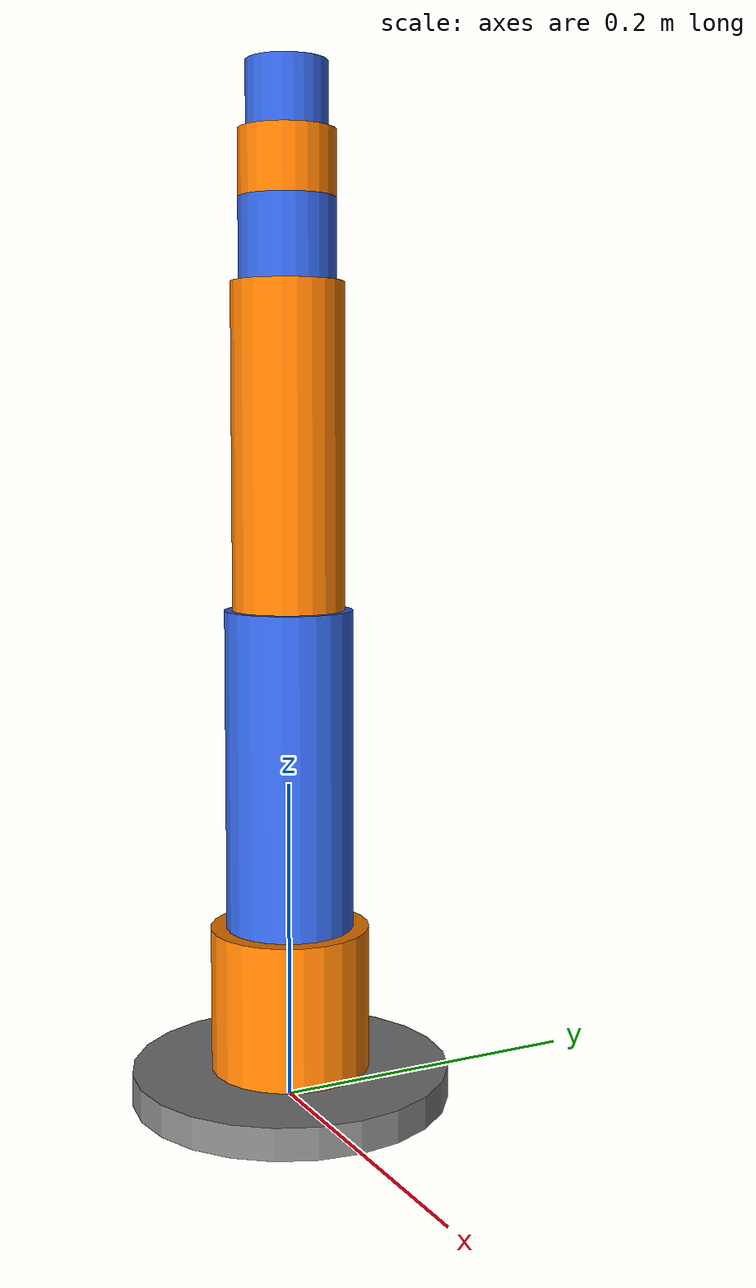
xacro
<?xml version="1.0"?>
<robot name="the_8th_leg" xmlns:xacro="http://www.ros.org/wiki/xacro">
    <xacro:arg name="hardware_plugin" default="gz_ros2_control/GazeboSimSystem"/>

    <!-- Properties -->
    <xacro:property name="link1_baseLength" value="0.02"/>
    <xacro:property name="link2_shoulderLength" value="0.09"/>
    <xacro:property name="link3_upperArmLength" value="0.20"/>
    <xacro:property name="link4_lowerArmLength" value="0.20"/>
    <xacro:property name="link5_wristPitchLength" value="0.05"/>
    <xacro:property name="link6_wristRollLength" value="0.04"/>
    <xacro:property name="link7_wristYawLength" value="0.04"/>

    <xacro:property name="link1_baseRadius" value="0.1"/>
    <xacro:property name="link2_shoulderRadius" value="0.05"/>
    <xacro:property name="link3_upperArmRadius" value="0.04"/>
    <xacro:property name="link4_lowerArmRadius" value="0.035"/>
    <xacro:property name="link5_wristPitchRadius" value="0.03"/>
    <xacro:property name="link6_wristRollRadius" value="0.03"/>
    <xacro:property name="link7_wristYawRadius" value="0.025"/>

    <xacro:property name="simplifiedMass" value="1"/>

    <xacro:property name="joint_effort"   value="50.0"/>
    <xacro:property name="joint_velocity" value="1.0"/>
    <xacro:property name="joint_damping"  value="0.5"/>

    <!-- Colors so you can actually see the joints rotate -->
    <material name="grey">
        <color rgba="0.5 0.5 0.5 1.0"/>
    </material>
    <material name="orange">
        <color rgba="1.0 0.5 0.0 1.0"/>
    </material>
    <material name="blue">
        <color rgba="0.2 0.4 0.9 1.0"/>
    </material>

    <!-- Macro -->
    <xacro:macro name="cyl_link" params="name radius length mass material">

        <xacro:property name="ixx" value="${(1/12) * mass * (3*radius**2 + length**2)}"/>
        <xacro:property name="izz" value="${0.5 * mass * radius**2}"/>

        <link name="${name}">
            <visual>
                <origin xyz="0 0 ${length/2}"/>
                <geometry>
                    <cylinder radius="${radius}" length="${length}"/>
                </geometry>
                <material name="${material}"/>
            </visual>
            <collision>
                <origin xyz="0 0 ${length/2}"/>
                <geometry>
                     <cylinder radius="${radius}" length="${length}"/>
                </geometry>
            </collision>
            <inertial>
                <origin xyz="0 0 ${length/2}"/>
                <mass value="${mass}"/>
                <inertia ixx="${ixx}" iyy="${ixx}" izz="${izz}" ixy="0" ixz="0" iyz="0"/>
            </inertial>
        </link>
    </xacro:macro>

    <!-- Calls -->
    <link name="world"/>

    <xacro:cyl_link name="base_link" radius="${link1_baseRadius}"       length="${link1_baseLength}"       mass="${simplifiedMass}" material="grey"/>
    <xacro:cyl_link name="link_2"    radius="${link2_shoulderRadius}"   length="${link2_shoulderLength}"   mass="${simplifiedMass}" material="orange"/>
    <xacro:cyl_link name="link_3"    radius="${link3_upperArmRadius}"   length="${link3_upperArmLength}"   mass="${simplifiedMass}" material="blue"/>
    <xacro:cyl_link name="link_4"    radius="${link4_lowerArmRadius}"   length="${link4_lowerArmLength}"   mass="${simplifiedMass}" material="orange"/>
    <xacro:cyl_link name="link_5"    radius="${link5_wristPitchRadius}" length="${link5_wristPitchLength}" mass="${simplifiedMass}" material="blue"/>
    <xacro:cyl_link name="link_6"    radius="${link6_wristRollRadius}"  length="${link6_wristRollLength}"  mass="${simplifiedMass}" material="orange"/>
    <xacro:cyl_link name="link_7"    radius="${link7_wristYawRadius}"   length="${link7_wristYawLength}"   mass="${simplifiedMass}" material="blue"/>

    <!-- Joint 0 : World link to Base link -->
    <joint name="world_joint" type="fixed">
        <parent link="world"/>
        <child link="base_link"/>
        <origin xyz="0 0 0"/>
    </joint>

    <!-- JOINT 1 : Base yaw, CCW from above -->
    <joint name="base_yaw_joint" type="revolute">
        <parent link="base_link"/>
        <child link="link_2"/>
        <origin xyz="0 0 ${link1_baseLength}"/>
        <axis xyz="0 0 1"/>
        <limit lower="${-pi}" upper="${pi}" effort="${joint_effort}" velocity="${joint_velocity}"/>
        <dynamics damping="${joint_damping}" friction="0.0"/>
    </joint>

    <!-- JOINT 2 : Shoulder pitch, + tips forward toward +X -->
    <joint name="shoulder_pitch_joint" type="revolute">
        <parent link="link_2"/>
        <child link="link_3"/>
        <origin xyz="0 0 ${link2_shoulderLength}"/>
        <axis xyz="0 1 0"/>
        <limit lower="${radians(-108)}" upper="${radians(114)}" effort="${joint_effort}" velocity="${joint_velocity}"/>
        <dynamics damping="${joint_damping}" friction="0.0"/>
    </joint>

    <!-- JOINT 3 : Elbow pitch, + folds forward toward +X -->
    <joint name="elbow_pitch_joint" type="revolute">
        <parent link="link_3"/>
        <child link="link_4"/>
        <origin xyz="0 0 ${link3_upperArmLength}"/>
        <axis xyz="0 1 0"/>
        <limit lower="${radians(-33)}" upper="${radians(150)}" effort="${joint_effort}" velocity="${joint_velocity}"/>
        <dynamics damping="${joint_damping}" friction="0.0"/>
    </joint>

    <!-- JOINT 4 : Wrist pitch, + tips forward toward +X -->
    <joint name="wrist_pitch_joint" type="revolute">
        <parent link="link_4"/>
        <child link="link_5"/>
        <origin xyz="0 0 ${link4_lowerArmLength}"/>
        <axis xyz="0 1 0"/>
        <limit lower="${radians(-100)}" upper="${radians(123)}" effort="${joint_effort}" velocity="${joint_velocity}"/>
        <dynamics damping="${joint_damping}" friction="0.0"/>
    </joint>

    <!-- JOINT 5 : Wrist roll, spins about its own long axis (full rotation ok) -->
    <joint name="wrist_roll_joint" type="revolute">
        <parent link="link_5"/>
        <child link="link_6"/>
        <origin xyz="0 0 ${link5_wristPitchLength}"/>
        <axis xyz="0 0 1"/>
        <limit lower="${-pi}" upper="${pi}" effort="${joint_effort}" velocity="${joint_velocity}"/>
        <dynamics damping="${joint_damping}" friction="0.0"/>
    </joint>

    <!-- JOINT 6 : Wrist yaw. X-axis bend, perpendicular to wrist pitch in the tool frame.
         Third orientation DOF after roll. + toward -Y -->
    <joint name="wrist_yaw_joint" type="revolute">
        <parent link="link_6"/>
        <child link="link_7"/>
        <origin xyz="0 0 ${link6_wristRollLength}"/>
        <axis xyz="1 0 0"/>
        <limit lower="${radians(-90)}" upper="${radians(90)}" effort="${joint_effort}" velocity="${joint_velocity}"/>
        <dynamics damping="${joint_damping}" friction="0.0"/>
    </joint>

    <!-- ros2_control: interfaces per joint -->
    <xacro:macro name="joint_ifaces" params="name initial">
        <joint name="${name}">
            <command_interface name="position"/>
            <state_interface name="position">
                <param name="initial_value">${initial}</param>
            </state_interface>
            <state_interface name="velocity"/>
        </joint>
    </xacro:macro>

    <ros2_control name="the_8th_leg_system" type="system">
        <hardware>
            <plugin>$(arg hardware_plugin)</plugin>
        </hardware>
        <xacro:joint_ifaces name="base_yaw_joint"       initial="0.0"/>
        <xacro:joint_ifaces name="shoulder_pitch_joint" initial="0.4"/>
        <xacro:joint_ifaces name="elbow_pitch_joint"    initial="1.0"/>
        <xacro:joint_ifaces name="wrist_pitch_joint"    initial="0.6"/>
        <xacro:joint_ifaces name="wrist_roll_joint"     initial="0.0"/>
        <xacro:joint_ifaces name="wrist_yaw_joint"      initial="0.0"/>
    </ros2_control>

    <!-- Gazebo loads ros2_control and starts the controller manager -->
    <gazebo>
        <plugin filename="gz_ros2_control-system" name="gz_ros2_control::GazeboSimROS2ControlPlugin">
            <parameters>$(find the_8th_leg_bringup)/config/controllers.yaml</parameters>
        </plugin>
    </gazebo>
</robot>
